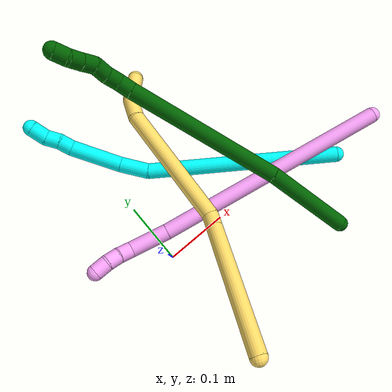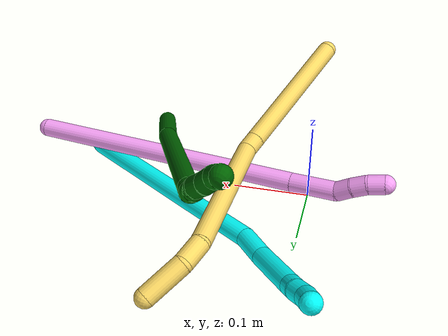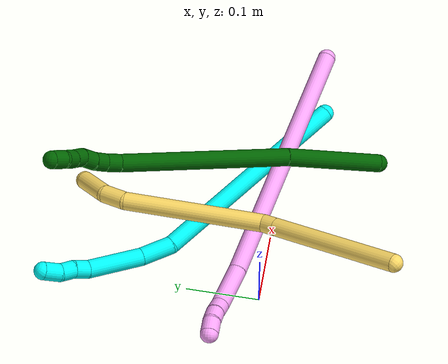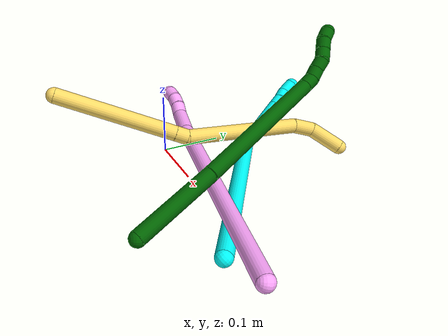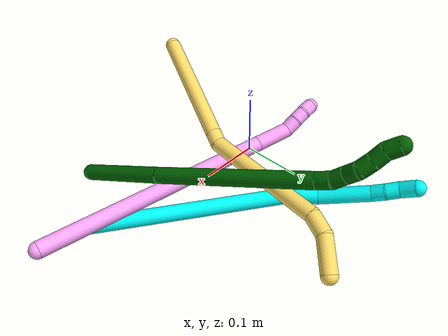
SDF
<sdf version="1.7">
 <world name="default">
  <model name="3">
   <static>0</static>
   <link name="3">
    <collision name="collision-cylinder-e_1_1_4">
     <pose>-0.116083 0.077307 0.063364 -0.884189 -0.859907 0.427485</pose>
     <geometry><cylinder><radius>0.0125</radius><length>0.306377</length></cylinder></geometry>
     <surface>
      <friction><ode><mu>1.16</mu><mu2>1.16</mu2><slip1>0</slip1><slip2>0</slip2></ode></friction>
      <contact><ode><kp>1e+06</kp><kd>1</kd><max_vel>0</max_vel><min_depth>0.001</min_depth></ode></contact>
     </surface>
    </collision>
    <visual name="visual-cylinder-e_1_1_4">
     <pose>-0.116083 0.077307 0.063364 -0.884189 -0.859907 0.427485</pose>
     <geometry><cylinder><radius>0.0125</radius><length>0.306377</length></cylinder></geometry>
     <material><ambient>0.003922 1 0.996078 1</ambient></material>
    </visual>
    <collision name="collision-cylinder-e_2_4_5">
     <pose>-0.244435 0.167256 0.141557 -0.70602 -0.561861 0.211842</pose>
     <geometry><cylinder><radius>0.0125</radius><length>0.046054</length></cylinder></geometry>
     <surface>
      <friction><ode><mu>1.16</mu><mu2>1.16</mu2><slip1>0</slip1><slip2>0</slip2></ode></friction>
      <contact><ode><kp>1e+06</kp><kd>1</kd><max_vel>0</max_vel><min_depth>0.001</min_depth></ode></contact>
     </surface>
    </collision>
    <visual name="visual-cylinder-e_2_4_5">
     <pose>-0.244435 0.167256 0.141557 -0.70602 -0.561861 0.211842</pose>
     <geometry><cylinder><radius>0.0125</radius><length>0.046054</length></cylinder></geometry>
     <material><ambient>0.003922 1 0.996078 1</ambient></material>
    </visual>
    <collision name="collision-cylinder-e_3_5_6">
     <pose>-0.276787 0.196698 0.186981 -0.502122 -0.522157 0.136833</pose>
     <geometry><cylinder><radius>0.0125</radius><length>0.08054</length></cylinder></geometry>
     <surface>
      <friction><ode><mu>1.16</mu><mu2>1.16</mu2><slip1>0</slip1><slip2>0</slip2></ode></friction>
      <contact><ode><kp>1e+06</kp><kd>1</kd><max_vel>0</max_vel><min_depth>0.001</min_depth></ode></contact>
     </surface>
    </collision>
    <visual name="visual-cylinder-e_3_5_6">
     <pose>-0.276787 0.196698 0.186981 -0.502122 -0.522157 0.136833</pose>
     <geometry><cylinder><radius>0.0125</radius><length>0.08054</length></cylinder></geometry>
     <material><ambient>0.003922 1 0.996078 1</ambient></material>
    </visual>
    <collision name="collision-cylinder-e_4_6_7">
     <pose>-0.300838 0.216154 0.226873 -0.278399 -0.389252 0.055222</pose>
     <geometry><cylinder><radius>0.0125</radius><length>0.020902</length></cylinder></geometry>
     <surface>
      <friction><ode><mu>1.16</mu><mu2>1.16</mu2><slip1>0</slip1><slip2>0</slip2></ode></friction>
      <contact><ode><kp>1e+06</kp><kd>1</kd><max_vel>0</max_vel><min_depth>0.001</min_depth></ode></contact>
     </surface>
    </collision>
    <visual name="visual-cylinder-e_4_6_7">
     <pose>-0.300838 0.216154 0.226873 -0.278399 -0.389252 0.055222</pose>
     <geometry><cylinder><radius>0.0125</radius><length>0.020902</length></cylinder></geometry>
     <material><ambient>0.003922 1 0.996078 1</ambient></material>
    </visual>
    <collision name="collision-cylinder-e_5_7_8">
     <pose>-0.310623 0.222325 0.243993 -0.422058 -0.596197 0.131449</pose>
     <geometry><cylinder><radius>0.0125</radius><length>0.020727</length></cylinder></geometry>
     <surface>
      <friction><ode><mu>1.16</mu><mu2>1.16</mu2><slip1>0</slip1><slip2>0</slip2></ode></friction>
      <contact><ode><kp>1e+06</kp><kd>1</kd><max_vel>0</max_vel><min_depth>0.001</min_depth></ode></contact>
     </surface>
    </collision>
    <visual name="visual-cylinder-e_5_7_8">
     <pose>-0.310623 0.222325 0.243993 -0.422058 -0.596197 0.131449</pose>
     <geometry><cylinder><radius>0.0125</radius><length>0.020727</length></cylinder></geometry>
     <material><ambient>0.003922 1 0.996078 1</ambient></material>
    </visual>
    <collision name="collision-cylinder-e_6_8_2">
     <pose>-0.320258 0.228723 0.263581 -0.240529 -0.305163 0.037163</pose>
     <geometry><cylinder><radius>0.0125</radius><length>0.0254</length></cylinder></geometry>
     <surface>
      <friction><ode><mu>1.16</mu><mu2>1.16</mu2><slip1>0</slip1><slip2>0</slip2></ode></friction>
      <contact><ode><kp>1e+06</kp><kd>1</kd><max_vel>0</max_vel><min_depth>0.001</min_depth></ode></contact>
     </surface>
    </collision>
    <visual name="visual-cylinder-e_6_8_2">
     <pose>-0.320258 0.228723 0.263581 -0.240529 -0.305163 0.037163</pose>
     <geometry><cylinder><radius>0.0125</radius><length>0.0254</length></cylinder></geometry>
     <material><ambient>0.003922 1 0.996078 1</ambient></material>
    </visual>
    <collision name="collision-sphere-2">
     <pose>-0.324074 0.231609 0.275345 0 -0 0</pose>
     <geometry><sphere><radius>0.0125</radius></sphere></geometry>
     <surface>
      <friction><ode><mu>1.16</mu><mu2>1.16</mu2><slip1>0</slip1><slip2>0</slip2></ode></friction>
      <contact><ode><kp>1e+06</kp><kd>1</kd><max_vel>0</max_vel><min_depth>0.001</min_depth></ode></contact>
     </surface>
    </collision>
    <visual name="visual-sphere-2">
     <pose>-0.324074 0.231609 0.275345 0 -0 0</pose>
     <geometry><sphere><radius>0.0125</radius></sphere></geometry>
     <material><ambient>0.003922 1 0.996078 1</ambient></material>
    </visual>
    <collision name="collision-sphere-4">
     <pose>-0.232167 0.154613 0.126728 0 -0 0</pose>
     <geometry><sphere><radius>0.0125</radius></sphere></geometry>
     <surface>
      <friction><ode><mu>1.16</mu><mu2>1.16</mu2><slip1>0</slip1><slip2>0</slip2></ode></friction>
      <contact><ode><kp>1e+06</kp><kd>1</kd><max_vel>0</max_vel><min_depth>0.001</min_depth></ode></contact>
     </surface>
    </collision>
    <visual name="visual-sphere-4">
     <pose>-0.232167 0.154613 0.126728 0 -0 0</pose>
     <geometry><sphere><radius>0.0125</radius></sphere></geometry>
     <material><ambient>0.003922 1 0.996078 1</ambient></material>
    </visual>
    <collision name="collision-sphere-1">
     <geometry><sphere><radius>0.0125</radius></sphere></geometry>
     <surface>
      <friction><ode><mu>1.16</mu><mu2>1.16</mu2><slip1>0</slip1><slip2>0</slip2></ode></friction>
      <contact><ode><kp>1e+06</kp><kd>1</kd><max_vel>0</max_vel><min_depth>0.001</min_depth></ode></contact>
     </surface>
    </collision>
    <visual name="visual-sphere-1">
     <geometry><sphere><radius>0.0125</radius></sphere></geometry>
     <material><ambient>0.003922 1 0.996078 1</ambient></material>
    </visual>
    <collision name="collision-sphere-8">
     <pose>-0.316443 0.225838 0.251816 0 -0 0</pose>
     <geometry><sphere><radius>0.0125</radius></sphere></geometry>
     <surface>
      <friction><ode><mu>1.16</mu><mu2>1.16</mu2><slip1>0</slip1><slip2>0</slip2></ode></friction>
      <contact><ode><kp>1e+06</kp><kd>1</kd><max_vel>0</max_vel><min_depth>0.001</min_depth></ode></contact>
     </surface>
    </collision>
    <visual name="visual-sphere-8">
     <pose>-0.316443 0.225838 0.251816 0 -0 0</pose>
     <geometry><sphere><radius>0.0125</radius></sphere></geometry>
     <material><ambient>0.003922 1 0.996078 1</ambient></material>
    </visual>
    <collision name="collision-sphere-5">
     <pose>-0.256703 0.1799 0.156385 0 -0 0</pose>
     <geometry><sphere><radius>0.0125</radius></sphere></geometry>
     <surface>
      <friction><ode><mu>1.16</mu><mu2>1.16</mu2><slip1>0</slip1><slip2>0</slip2></ode></friction>
      <contact><ode><kp>1e+06</kp><kd>1</kd><max_vel>0</max_vel><min_depth>0.001</min_depth></ode></contact>
     </surface>
    </collision>
    <visual name="visual-sphere-5">
     <pose>-0.256703 0.1799 0.156385 0 -0 0</pose>
     <geometry><sphere><radius>0.0125</radius></sphere></geometry>
     <material><ambient>0.003922 1 0.996078 1</ambient></material>
    </visual>
    <collision name="collision-sphere-6">
     <pose>-0.296872 0.213497 0.217576 0 -0 0</pose>
     <geometry><sphere><radius>0.0125</radius></sphere></geometry>
     <surface>
      <friction><ode><mu>1.16</mu><mu2>1.16</mu2><slip1>0</slip1><slip2>0</slip2></ode></friction>
      <contact><ode><kp>1e+06</kp><kd>1</kd><max_vel>0</max_vel><min_depth>0.001</min_depth></ode></contact>
     </surface>
    </collision>
    <visual name="visual-sphere-6">
     <pose>-0.296872 0.213497 0.217576 0 -0 0</pose>
     <geometry><sphere><radius>0.0125</radius></sphere></geometry>
     <material><ambient>0.003922 1 0.996078 1</ambient></material>
    </visual>
    <collision name="collision-sphere-7">
     <pose>-0.304804 0.218812 0.23617 0 -0 0</pose>
     <geometry><sphere><radius>0.0125</radius></sphere></geometry>
     <surface>
      <friction><ode><mu>1.16</mu><mu2>1.16</mu2><slip1>0</slip1><slip2>0</slip2></ode></friction>
      <contact><ode><kp>1e+06</kp><kd>1</kd><max_vel>0</max_vel><min_depth>0.001</min_depth></ode></contact>
     </surface>
    </collision>
    <visual name="visual-sphere-7">
     <pose>-0.304804 0.218812 0.23617 0 -0 0</pose>
     <geometry><sphere><radius>0.0125</radius></sphere></geometry>
     <material><ambient>0.003922 1 0.996078 1</ambient></material>
    </visual>
    <inertial>
     <pose>-0.179952 0.124331 0.114973 0 -0 0</pose>
     <mass>0.5</mass>
     <inertia>
      <ixx>0.002117</ixx>
      <ixy>0</ixy>
      <ixz>0</ixz>
      <iyy>0.002707</iyy>
      <iyz>0</iyz>
      <izz>0.000636</izz>
     </inertia>
    </inertial>
   </link>
   <pose>0.309725 -0.043417 0.01146 -0.906077 0.189602 0.082566</pose>
  </model>
  <model name="4">
   <static>0</static>
   <link name="4">
    <collision name="collision-cylinder-e_1_1_4">
     <pose>-0.179604 -0.054889 -0.002141 1.60979 -1.27399 -1.31149</pose>
     <geometry><cylinder><radius>0.0125</radius><length>0.375632</length></cylinder></geometry>
     <surface>
      <friction><ode><mu>1.16</mu><mu2>1.16</mu2><slip1>0</slip1><slip2>0</slip2></ode></friction>
      <contact><ode><kp>1e+06</kp><kd>1</kd><max_vel>0</max_vel><min_depth>0.001</min_depth></ode></contact>
     </surface>
    </collision>
    <visual name="visual-cylinder-e_1_1_4">
     <pose>-0.179604 -0.054889 -0.002141 1.60979 -1.27399 -1.31149</pose>
     <geometry><cylinder><radius>0.0125</radius><length>0.375632</length></cylinder></geometry>
     <material><ambient>1 0.65098 0.996078 1</ambient></material>
    </visual>
    <collision name="collision-cylinder-e_2_4_5">
     <pose>-0.388872 -0.116798 -0.005576 1.75303 -1.33462 -1.51568</pose>
     <geometry><cylinder><radius>0.0125</radius><length>0.061021</length></cylinder></geometry>
     <surface>
      <friction><ode><mu>1.16</mu><mu2>1.16</mu2><slip1>0</slip1><slip2>0</slip2></ode></friction>
      <contact><ode><kp>1e+06</kp><kd>1</kd><max_vel>0</max_vel><min_depth>0.001</min_depth></ode></contact>
     </surface>
    </collision>
    <visual name="visual-cylinder-e_2_4_5">
     <pose>-0.388872 -0.116798 -0.005576 1.75303 -1.33462 -1.51568</pose>
     <geometry><cylinder><radius>0.0125</radius><length>0.061021</length></cylinder></geometry>
     <material><ambient>1 0.65098 0.996078 1</ambient></material>
    </visual>
    <collision name="collision-cylinder-e_3_5_6">
     <pose>-0.429195 -0.121751 -0.005413 -0.957095 -1.33783 0.778333</pose>
     <geometry><cylinder><radius>0.0125</radius><length>0.021912</length></cylinder></geometry>
     <surface>
      <friction><ode><mu>1.16</mu><mu2>1.16</mu2><slip1>0</slip1><slip2>0</slip2></ode></friction>
      <contact><ode><kp>1e+06</kp><kd>1</kd><max_vel>0</max_vel><min_depth>0.001</min_depth></ode></contact>
     </surface>
    </collision>
    <visual name="visual-cylinder-e_3_5_6">
     <pose>-0.429195 -0.121751 -0.005413 -0.957095 -1.33783 0.778333</pose>
     <geometry><cylinder><radius>0.0125</radius><length>0.021912</length></cylinder></geometry>
     <material><ambient>1 0.65098 0.996078 1</ambient></material>
    </visual>
    <collision name="collision-cylinder-e_4_6_7">
     <pose>-0.449725 -0.119154 -0.00201 -0.265377 -1.36915 0.21704</pose>
     <geometry><cylinder><radius>0.0125</radius><length>0.020147</length></cylinder></geometry>
     <surface>
      <friction><ode><mu>1.16</mu><mu2>1.16</mu2><slip1>0</slip1><slip2>0</slip2></ode></friction>
      <contact><ode><kp>1e+06</kp><kd>1</kd><max_vel>0</max_vel><min_depth>0.001</min_depth></ode></contact>
     </surface>
    </collision>
    <visual name="visual-cylinder-e_4_6_7">
     <pose>-0.449725 -0.119154 -0.00201 -0.265377 -1.36915 0.21704</pose>
     <geometry><cylinder><radius>0.0125</radius><length>0.020147</length></cylinder></geometry>
     <material><ambient>1 0.65098 0.996078 1</ambient></material>
    </visual>
    <collision name="collision-cylinder-e_5_7_2">
     <pose>-0.469746 -0.120818 0.002264 0.755893 -1.26568 -0.566753</pose>
     <geometry><cylinder><radius>0.0125</radius><length>0.021287</length></cylinder></geometry>
     <surface>
      <friction><ode><mu>1.16</mu><mu2>1.16</mu2><slip1>0</slip1><slip2>0</slip2></ode></friction>
      <contact><ode><kp>1e+06</kp><kd>1</kd><max_vel>0</max_vel><min_depth>0.001</min_depth></ode></contact>
     </surface>
    </collision>
    <visual name="visual-cylinder-e_5_7_2">
     <pose>-0.469746 -0.120818 0.002264 0.755893 -1.26568 -0.566753</pose>
     <geometry><cylinder><radius>0.0125</radius><length>0.021287</length></cylinder></geometry>
     <material><ambient>1 0.65098 0.996078 1</ambient></material>
    </visual>
    <collision name="collision-sphere-2">
     <pose>-0.479898 -0.123012 0.00459 0 -0 0</pose>
     <geometry><sphere><radius>0.0125</radius></sphere></geometry>
     <surface>
      <friction><ode><mu>1.16</mu><mu2>1.16</mu2><slip1>0</slip1><slip2>0</slip2></ode></friction>
      <contact><ode><kp>1e+06</kp><kd>1</kd><max_vel>0</max_vel><min_depth>0.001</min_depth></ode></contact>
     </surface>
    </collision>
    <visual name="visual-sphere-2">
     <pose>-0.479898 -0.123012 0.00459 0 -0 0</pose>
     <geometry><sphere><radius>0.0125</radius></sphere></geometry>
     <material><ambient>1 0.65098 0.996078 1</ambient></material>
    </visual>
    <collision name="collision-sphere-7">
     <pose>-0.459595 -0.118625 -6.3e-05 0 -0 0</pose>
     <geometry><sphere><radius>0.0125</radius></sphere></geometry>
     <surface>
      <friction><ode><mu>1.16</mu><mu2>1.16</mu2><slip1>0</slip1><slip2>0</slip2></ode></friction>
      <contact><ode><kp>1e+06</kp><kd>1</kd><max_vel>0</max_vel><min_depth>0.001</min_depth></ode></contact>
     </surface>
    </collision>
    <visual name="visual-sphere-7">
     <pose>-0.459595 -0.118625 -6.3e-05 0 -0 0</pose>
     <geometry><sphere><radius>0.0125</radius></sphere></geometry>
     <material><ambient>1 0.65098 0.996078 1</ambient></material>
    </visual>
    <collision name="collision-sphere-6">
     <pose>-0.439855 -0.119683 -0.003957 0 -0 0</pose>
     <geometry><sphere><radius>0.0125</radius></sphere></geometry>
     <surface>
      <friction><ode><mu>1.16</mu><mu2>1.16</mu2><slip1>0</slip1><slip2>0</slip2></ode></friction>
      <contact><ode><kp>1e+06</kp><kd>1</kd><max_vel>0</max_vel><min_depth>0.001</min_depth></ode></contact>
     </surface>
    </collision>
    <visual name="visual-sphere-6">
     <pose>-0.439855 -0.119683 -0.003957 0 -0 0</pose>
     <geometry><sphere><radius>0.0125</radius></sphere></geometry>
     <material><ambient>1 0.65098 0.996078 1</ambient></material>
    </visual>
    <collision name="collision-sphere-5">
     <pose>-0.418535 -0.123819 -0.00687 0 -0 0</pose>
     <geometry><sphere><radius>0.0125</radius></sphere></geometry>
     <surface>
      <friction><ode><mu>1.16</mu><mu2>1.16</mu2><slip1>0</slip1><slip2>0</slip2></ode></friction>
      <contact><ode><kp>1e+06</kp><kd>1</kd><max_vel>0</max_vel><min_depth>0.001</min_depth></ode></contact>
     </surface>
    </collision>
    <visual name="visual-sphere-5">
     <pose>-0.418535 -0.123819 -0.00687 0 -0 0</pose>
     <geometry><sphere><radius>0.0125</radius></sphere></geometry>
     <material><ambient>1 0.65098 0.996078 1</ambient></material>
    </visual>
    <collision name="collision-sphere-1">
     <geometry><sphere><radius>0.0125</radius></sphere></geometry>
     <surface>
      <friction><ode><mu>1.16</mu><mu2>1.16</mu2><slip1>0</slip1><slip2>0</slip2></ode></friction>
      <contact><ode><kp>1e+06</kp><kd>1</kd><max_vel>0</max_vel><min_depth>0.001</min_depth></ode></contact>
     </surface>
    </collision>
    <visual name="visual-sphere-1">
     <geometry><sphere><radius>0.0125</radius></sphere></geometry>
     <material><ambient>1 0.65098 0.996078 1</ambient></material>
    </visual>
    <collision name="collision-sphere-4">
     <pose>-0.359208 -0.109777 -0.004282 0 -0 0</pose>
     <geometry><sphere><radius>0.0125</radius></sphere></geometry>
     <surface>
      <friction><ode><mu>1.16</mu><mu2>1.16</mu2><slip1>0</slip1><slip2>0</slip2></ode></friction>
      <contact><ode><kp>1e+06</kp><kd>1</kd><max_vel>0</max_vel><min_depth>0.001</min_depth></ode></contact>
     </surface>
    </collision>
    <visual name="visual-sphere-4">
     <pose>-0.359208 -0.109777 -0.004282 0 -0 0</pose>
     <geometry><sphere><radius>0.0125</radius></sphere></geometry>
     <material><ambient>1 0.65098 0.996078 1</ambient></material>
    </visual>
    <inertial>
     <pose>-0.239319 -0.070771 -0.002511 0 -0 0</pose>
     <mass>0.5</mass>
     <inertia>
      <ixx>-0.000962</ixx>
      <ixy>0</ixy>
      <ixz>0</ixz>
      <iyy>0.002806</iyy>
      <iyz>0</iyz>
      <izz>0.005563</izz>
     </inertia>
    </inertial>
   </link>
   <pose>0.388501 -0.033378 0.034358 1.25732 0.296254 -0.256961</pose>
  </model>
  <model name="5">
   <static>0</static>
   <link name="5">
    <collision name="collision-cylinder-e_1_1_4">
     <pose>0.020339 0.094131 0.01041 -1.46066 0.211545 -0.18958</pose>
     <geometry><cylinder><radius>0.0125</radius><length>0.193729</length></cylinder></geometry>
     <surface>
      <friction><ode><mu>1.16</mu><mu2>1.16</mu2><slip1>0</slip1><slip2>0</slip2></ode></friction>
      <contact><ode><kp>1e+06</kp><kd>1</kd><max_vel>0</max_vel><min_depth>0.001</min_depth></ode></contact>
     </surface>
    </collision>
    <visual name="visual-cylinder-e_1_1_4">
     <pose>0.020339 0.094131 0.01041 -1.46066 0.211545 -0.18958</pose>
     <geometry><cylinder><radius>0.0125</radius><length>0.193729</length></cylinder></geometry>
     <material><ambient>1 0.858824 0.4 1</ambient></material>
    </visual>
    <collision name="collision-cylinder-e_2_4_5">
     <pose>0.042872 0.19841 0.02194 -1.46076 0.211733 -0.189768</pose>
     <geometry><cylinder><radius>0.0125</radius><length>0.020886</length></cylinder></geometry>
     <surface>
      <friction><ode><mu>1.16</mu><mu2>1.16</mu2><slip1>0</slip1><slip2>0</slip2></ode></friction>
      <contact><ode><kp>1e+06</kp><kd>1</kd><max_vel>0</max_vel><min_depth>0.001</min_depth></ode></contact>
     </surface>
    </collision>
    <visual name="visual-cylinder-e_2_4_5">
     <pose>0.042872 0.19841 0.02194 -1.46076 0.211733 -0.189768</pose>
     <geometry><cylinder><radius>0.0125</radius><length>0.020886</length></cylinder></geometry>
     <material><ambient>1 0.858824 0.4 1</ambient></material>
    </visual>
    <collision name="collision-cylinder-e_3_5_6">
     <pose>0.090558 0.285802 0.062231 -1.10149 0.483653 -0.300669</pose>
     <geometry><cylinder><radius>0.0125</radius><length>0.195656</length></cylinder></geometry>
     <surface>
      <friction><ode><mu>1.16</mu><mu2>1.16</mu2><slip1>0</slip1><slip2>0</slip2></ode></friction>
      <contact><ode><kp>1e+06</kp><kd>1</kd><max_vel>0</max_vel><min_depth>0.001</min_depth></ode></contact>
     </surface>
    </collision>
    <visual name="visual-cylinder-e_3_5_6">
     <pose>0.090558 0.285802 0.062231 -1.10149 0.483653 -0.300669</pose>
     <geometry><cylinder><radius>0.0125</radius><length>0.195656</length></cylinder></geometry>
     <material><ambient>1 0.858824 0.4 1</ambient></material>
    </visual>
    <collision name="collision-cylinder-e_4_6_7">
     <pose>0.141317 0.379135 0.103528 -1.43941 0.313821 -0.2756</pose>
     <geometry><cylinder><radius>0.0125</radius><length>0.034126</length></cylinder></geometry>
     <surface>
      <friction><ode><mu>1.16</mu><mu2>1.16</mu2><slip1>0</slip1><slip2>0</slip2></ode></friction>
      <contact><ode><kp>1e+06</kp><kd>1</kd><max_vel>0</max_vel><min_depth>0.001</min_depth></ode></contact>
     </surface>
    </collision>
    <visual name="visual-cylinder-e_4_6_7">
     <pose>0.141317 0.379135 0.103528 -1.43941 0.313821 -0.2756</pose>
     <geometry><cylinder><radius>0.0125</radius><length>0.034126</length></cylinder></geometry>
     <material><ambient>1 0.858824 0.4 1</ambient></material>
    </visual>
    <collision name="collision-cylinder-e_5_7_2">
     <pose>0.147438 0.422496 0.100317 -1.76406 0.030724 -0.037318</pose>
     <geometry><cylinder><radius>0.0125</radius><length>0.055603</length></cylinder></geometry>
     <surface>
      <friction><ode><mu>1.16</mu><mu2>1.16</mu2><slip1>0</slip1><slip2>0</slip2></ode></friction>
      <contact><ode><kp>1e+06</kp><kd>1</kd><max_vel>0</max_vel><min_depth>0.001</min_depth></ode></contact>
     </surface>
    </collision>
    <visual name="visual-cylinder-e_5_7_2">
     <pose>0.147438 0.422496 0.100317 -1.76406 0.030724 -0.037318</pose>
     <geometry><cylinder><radius>0.0125</radius><length>0.055603</length></cylinder></geometry>
     <material><ambient>1 0.858824 0.4 1</ambient></material>
    </visual>
    <collision name="collision-sphere-2">
     <pose>0.148292 0.449767 0.09498 0 -0 0</pose>
     <geometry><sphere><radius>0.0125</radius></sphere></geometry>
     <surface>
      <friction><ode><mu>1.16</mu><mu2>1.16</mu2><slip1>0</slip1><slip2>0</slip2></ode></friction>
      <contact><ode><kp>1e+06</kp><kd>1</kd><max_vel>0</max_vel><min_depth>0.001</min_depth></ode></contact>
     </surface>
    </collision>
    <visual name="visual-sphere-2">
     <pose>0.148292 0.449767 0.09498 0 -0 0</pose>
     <geometry><sphere><radius>0.0125</radius></sphere></geometry>
     <material><ambient>1 0.858824 0.4 1</ambient></material>
    </visual>
    <collision name="collision-sphere-7">
     <pose>0.146584 0.395225 0.105654 0 -0 0</pose>
     <geometry><sphere><radius>0.0125</radius></sphere></geometry>
     <surface>
      <friction><ode><mu>1.16</mu><mu2>1.16</mu2><slip1>0</slip1><slip2>0</slip2></ode></friction>
      <contact><ode><kp>1e+06</kp><kd>1</kd><max_vel>0</max_vel><min_depth>0.001</min_depth></ode></contact>
     </surface>
    </collision>
    <visual name="visual-sphere-7">
     <pose>0.146584 0.395225 0.105654 0 -0 0</pose>
     <geometry><sphere><radius>0.0125</radius></sphere></geometry>
     <material><ambient>1 0.858824 0.4 1</ambient></material>
    </visual>
    <collision name="collision-sphere-6">
     <pose>0.13605 0.363045 0.101401 0 -0 0</pose>
     <geometry><sphere><radius>0.0125</radius></sphere></geometry>
     <surface>
      <friction><ode><mu>1.16</mu><mu2>1.16</mu2><slip1>0</slip1><slip2>0</slip2></ode></friction>
      <contact><ode><kp>1e+06</kp><kd>1</kd><max_vel>0</max_vel><min_depth>0.001</min_depth></ode></contact>
     </surface>
    </collision>
    <visual name="visual-sphere-6">
     <pose>0.13605 0.363045 0.101401 0 -0 0</pose>
     <geometry><sphere><radius>0.0125</radius></sphere></geometry>
     <material><ambient>1 0.858824 0.4 1</ambient></material>
    </visual>
    <collision name="collision-sphere-5">
     <pose>0.045067 0.208558 0.023062 0 -0 0</pose>
     <geometry><sphere><radius>0.0125</radius></sphere></geometry>
     <surface>
      <friction><ode><mu>1.16</mu><mu2>1.16</mu2><slip1>0</slip1><slip2>0</slip2></ode></friction>
      <contact><ode><kp>1e+06</kp><kd>1</kd><max_vel>0</max_vel><min_depth>0.001</min_depth></ode></contact>
     </surface>
    </collision>
    <visual name="visual-sphere-5">
     <pose>0.045067 0.208558 0.023062 0 -0 0</pose>
     <geometry><sphere><radius>0.0125</radius></sphere></geometry>
     <material><ambient>1 0.858824 0.4 1</ambient></material>
    </visual>
    <collision name="collision-sphere-1">
     <geometry><sphere><radius>0.0125</radius></sphere></geometry>
     <surface>
      <friction><ode><mu>1.16</mu><mu2>1.16</mu2><slip1>0</slip1><slip2>0</slip2></ode></friction>
      <contact><ode><kp>1e+06</kp><kd>1</kd><max_vel>0</max_vel><min_depth>0.001</min_depth></ode></contact>
     </surface>
    </collision>
    <visual name="visual-sphere-1">
     <geometry><sphere><radius>0.0125</radius></sphere></geometry>
     <material><ambient>1 0.858824 0.4 1</ambient></material>
    </visual>
    <collision name="collision-sphere-4">
     <pose>0.040677 0.188262 0.020819 0 -0 0</pose>
     <geometry><sphere><radius>0.0125</radius></sphere></geometry>
     <surface>
      <friction><ode><mu>1.16</mu><mu2>1.16</mu2><slip1>0</slip1><slip2>0</slip2></ode></friction>
      <contact><ode><kp>1e+06</kp><kd>1</kd><max_vel>0</max_vel><min_depth>0.001</min_depth></ode></contact>
     </surface>
    </collision>
    <visual name="visual-sphere-4">
     <pose>0.040677 0.188262 0.020819 0 -0 0</pose>
     <geometry><sphere><radius>0.0125</radius></sphere></geometry>
     <material><ambient>1 0.858824 0.4 1</ambient></material>
    </visual>
    <inertial>
     <pose>0.071149 0.229459 0.047524 0 -0 0</pose>
     <mass>0.5</mass>
     <inertia>
      <ixx>0.000876</ixx>
      <ixy>0</ixy>
      <ixz>0</ixz>
      <iyy>0.000193</iyy>
      <iyz>0</iyz>
      <izz>-0.001535</izz>
     </inertia>
    </inertial>
   </link>
   <pose>0.00617 -0.177146 0.138746 -1.78032 -0.993352 1.27714</pose>
  </model>
  <model name="6">
   <static>0</static>
   <link name="6">
    <collision name="collision-cylinder-e_1_1_4">
     <pose>-0.033585 0.020347 0.055869 -0.349262 -0.514167 0.0927</pose>
     <geometry><cylinder><radius>0.0125</radius><length>0.136576</length></cylinder></geometry>
     <surface>
      <friction><ode><mu>1.16</mu><mu2>1.16</mu2><slip1>0</slip1><slip2>0</slip2></ode></friction>
      <contact><ode><kp>1e+06</kp><kd>1</kd><max_vel>0</max_vel><min_depth>0.001</min_depth></ode></contact>
     </surface>
    </collision>
    <visual name="visual-cylinder-e_1_1_4">
     <pose>-0.033585 0.020347 0.055869 -0.349262 -0.514167 0.0927</pose>
     <geometry><cylinder><radius>0.0125</radius><length>0.136576</length></cylinder></geometry>
     <material><ambient>0 0.392157 0.003922 1</ambient></material>
    </visual>
    <collision name="collision-cylinder-e_2_4_5">
     <pose>-0.122248 0.087458 0.208744 -0.449205 -0.472772 0.109955</pose>
     <geometry><cylinder><radius>0.0125</radius><length>0.241914</length></cylinder></geometry>
     <surface>
      <friction><ode><mu>1.16</mu><mu2>1.16</mu2><slip1>0</slip1><slip2>0</slip2></ode></friction>
      <contact><ode><kp>1e+06</kp><kd>1</kd><max_vel>0</max_vel><min_depth>0.001</min_depth></ode></contact>
     </surface>
    </collision>
    <visual name="visual-cylinder-e_2_4_5">
     <pose>-0.122248 0.087458 0.208744 -0.449205 -0.472772 0.109955</pose>
     <geometry><cylinder><radius>0.0125</radius><length>0.241914</length></cylinder></geometry>
     <material><ambient>0 0.392157 0.003922 1</ambient></material>
    </visual>
    <collision name="collision-cylinder-e_3_5_6">
     <pose>-0.182883 0.137765 0.31408 -0.402151 -0.550425 0.114987</pose>
     <geometry><cylinder><radius>0.0125</radius><length>0.021244</length></cylinder></geometry>
     <surface>
      <friction><ode><mu>1.16</mu><mu2>1.16</mu2><slip1>0</slip1><slip2>0</slip2></ode></friction>
      <contact><ode><kp>1e+06</kp><kd>1</kd><max_vel>0</max_vel><min_depth>0.001</min_depth></ode></contact>
     </surface>
    </collision>
    <visual name="visual-cylinder-e_3_5_6">
     <pose>-0.182883 0.137765 0.31408 -0.402151 -0.550425 0.114987</pose>
     <geometry><cylinder><radius>0.0125</radius><length>0.021244</length></cylinder></geometry>
     <material><ambient>0 0.392157 0.003922 1</ambient></material>
    </visual>
    <collision name="collision-cylinder-e_4_6_7">
     <pose>-0.196129 0.144745 0.328029 -0.54891 -0.862618 0.257716</pose>
     <geometry><cylinder><radius>0.0125</radius><length>0.02025</length></cylinder></geometry>
     <surface>
      <friction><ode><mu>1.16</mu><mu2>1.16</mu2><slip1>0</slip1><slip2>0</slip2></ode></friction>
      <contact><ode><kp>1e+06</kp><kd>1</kd><max_vel>0</max_vel><min_depth>0.001</min_depth></ode></contact>
     </surface>
    </collision>
    <visual name="visual-cylinder-e_4_6_7">
     <pose>-0.196129 0.144745 0.328029 -0.54891 -0.862618 0.257716</pose>
     <geometry><cylinder><radius>0.0125</radius><length>0.02025</length></cylinder></geometry>
     <material><ambient>0 0.392157 0.003922 1</ambient></material>
    </visual>
    <collision name="collision-cylinder-e_5_7_8">
     <pose>-0.211768 0.149944 0.339465 -0.294187 -0.917923 0.146171</pose>
     <geometry><cylinder><radius>0.0125</radius><length>0.020013</length></cylinder></geometry>
     <surface>
      <friction><ode><mu>1.16</mu><mu2>1.16</mu2><slip1>0</slip1><slip2>0</slip2></ode></friction>
      <contact><ode><kp>1e+06</kp><kd>1</kd><max_vel>0</max_vel><min_depth>0.001</min_depth></ode></contact>
     </surface>
    </collision>
    <visual name="visual-cylinder-e_5_7_8">
     <pose>-0.211768 0.149944 0.339465 -0.294187 -0.917923 0.146171</pose>
     <geometry><cylinder><radius>0.0125</radius><length>0.020013</length></cylinder></geometry>
     <material><ambient>0 0.392157 0.003922 1</ambient></material>
    </visual>
    <collision name="collision-cylinder-e_6_8_9">
     <pose>-0.227487 0.157131 0.348477 -1.03867 -0.889867 0.532245</pose>
     <geometry><cylinder><radius>0.0125</radius><length>0.02</length></cylinder></geometry>
     <surface>
      <friction><ode><mu>1.16</mu><mu2>1.16</mu2><slip1>0</slip1><slip2>0</slip2></ode></friction>
      <contact><ode><kp>1e+06</kp><kd>1</kd><max_vel>0</max_vel><min_depth>0.001</min_depth></ode></contact>
     </surface>
    </collision>
    <visual name="visual-cylinder-e_6_8_9">
     <pose>-0.227487 0.157131 0.348477 -1.03867 -0.889867 0.532245</pose>
     <geometry><cylinder><radius>0.0125</radius><length>0.02</length></cylinder></geometry>
     <material><ambient>0 0.392157 0.003922 1</ambient></material>
    </visual>
    <collision name="collision-cylinder-e_7_9_10">
     <pose>-0.243727 0.167201 0.354254 -1.06321 -1.01044 0.628942</pose>
     <geometry><cylinder><radius>0.0125</radius><length>0.02</length></cylinder></geometry>
     <surface>
      <friction><ode><mu>1.16</mu><mu2>1.16</mu2><slip1>0</slip1><slip2>0</slip2></ode></friction>
      <contact><ode><kp>1e+06</kp><kd>1</kd><max_vel>0</max_vel><min_depth>0.001</min_depth></ode></contact>
     </surface>
    </collision>
    <visual name="visual-cylinder-e_7_9_10">
     <pose>-0.243727 0.167201 0.354254 -1.06321 -1.01044 0.628942</pose>
     <geometry><cylinder><radius>0.0125</radius><length>0.02</length></cylinder></geometry>
     <material><ambient>0 0.392157 0.003922 1</ambient></material>
    </visual>
    <collision name="collision-cylinder-e_8_10_2">
     <pose>-0.259108 0.176346 0.362496 -0.671984 -0.762797 0.2783</pose>
     <geometry><cylinder><radius>0.0125</radius><length>0.020002</length></cylinder></geometry>
     <surface>
      <friction><ode><mu>1.16</mu><mu2>1.16</mu2><slip1>0</slip1><slip2>0</slip2></ode></friction>
      <contact><ode><kp>1e+06</kp><kd>1</kd><max_vel>0</max_vel><min_depth>0.001</min_depth></ode></contact>
     </surface>
    </collision>
    <visual name="visual-cylinder-e_8_10_2">
     <pose>-0.259108 0.176346 0.362496 -0.671984 -0.762797 0.2783</pose>
     <geometry><cylinder><radius>0.0125</radius><length>0.020002</length></cylinder></geometry>
     <material><ambient>0 0.392157 0.003922 1</ambient></material>
    </visual>
    <collision name="collision-sphere-2">
     <pose>-0.266018 0.180847 0.368154 0 -0 0</pose>
     <geometry><sphere><radius>0.0125</radius></sphere></geometry>
     <surface>
      <friction><ode><mu>1.16</mu><mu2>1.16</mu2><slip1>0</slip1><slip2>0</slip2></ode></friction>
      <contact><ode><kp>1e+06</kp><kd>1</kd><max_vel>0</max_vel><min_depth>0.001</min_depth></ode></contact>
     </surface>
    </collision>
    <visual name="visual-sphere-2">
     <pose>-0.266018 0.180847 0.368154 0 -0 0</pose>
     <geometry><sphere><radius>0.0125</radius></sphere></geometry>
     <material><ambient>0 0.392157 0.003922 1</ambient></material>
    </visual>
    <collision name="collision-sphere-10">
     <pose>-0.252198 0.171846 0.356838 0 -0 0</pose>
     <geometry><sphere><radius>0.0125</radius></sphere></geometry>
     <surface>
      <friction><ode><mu>1.16</mu><mu2>1.16</mu2><slip1>0</slip1><slip2>0</slip2></ode></friction>
      <contact><ode><kp>1e+06</kp><kd>1</kd><max_vel>0</max_vel><min_depth>0.001</min_depth></ode></contact>
     </surface>
    </collision>
    <visual name="visual-sphere-10">
     <pose>-0.252198 0.171846 0.356838 0 -0 0</pose>
     <geometry><sphere><radius>0.0125</radius></sphere></geometry>
     <material><ambient>0 0.392157 0.003922 1</ambient></material>
    </visual>
    <collision name="collision-sphere-9">
     <pose>-0.235257 0.162556 0.351671 0 -0 0</pose>
     <geometry><sphere><radius>0.0125</radius></sphere></geometry>
     <surface>
      <friction><ode><mu>1.16</mu><mu2>1.16</mu2><slip1>0</slip1><slip2>0</slip2></ode></friction>
      <contact><ode><kp>1e+06</kp><kd>1</kd><max_vel>0</max_vel><min_depth>0.001</min_depth></ode></contact>
     </surface>
    </collision>
    <visual name="visual-sphere-9">
     <pose>-0.235257 0.162556 0.351671 0 -0 0</pose>
     <geometry><sphere><radius>0.0125</radius></sphere></geometry>
     <material><ambient>0 0.392157 0.003922 1</ambient></material>
    </visual>
    <collision name="collision-sphere-4">
     <pose>-0.06717 0.040694 0.111738 0 -0 0</pose>
     <geometry><sphere><radius>0.0125</radius></sphere></geometry>
     <surface>
      <friction><ode><mu>1.16</mu><mu2>1.16</mu2><slip1>0</slip1><slip2>0</slip2></ode></friction>
      <contact><ode><kp>1e+06</kp><kd>1</kd><max_vel>0</max_vel><min_depth>0.001</min_depth></ode></contact>
     </surface>
    </collision>
    <visual name="visual-sphere-4">
     <pose>-0.06717 0.040694 0.111738 0 -0 0</pose>
     <geometry><sphere><radius>0.0125</radius></sphere></geometry>
     <material><ambient>0 0.392157 0.003922 1</ambient></material>
    </visual>
    <collision name="collision-sphere-1">
     <geometry><sphere><radius>0.0125</radius></sphere></geometry>
     <surface>
      <friction><ode><mu>1.16</mu><mu2>1.16</mu2><slip1>0</slip1><slip2>0</slip2></ode></friction>
      <contact><ode><kp>1e+06</kp><kd>1</kd><max_vel>0</max_vel><min_depth>0.001</min_depth></ode></contact>
     </surface>
    </collision>
    <visual name="visual-sphere-1">
     <geometry><sphere><radius>0.0125</radius></sphere></geometry>
     <material><ambient>0 0.392157 0.003922 1</ambient></material>
    </visual>
    <collision name="collision-sphere-8">
     <pose>-0.219717 0.151707 0.345283 0 -0 0</pose>
     <geometry><sphere><radius>0.0125</radius></sphere></geometry>
     <surface>
      <friction><ode><mu>1.16</mu><mu2>1.16</mu2><slip1>0</slip1><slip2>0</slip2></ode></friction>
      <contact><ode><kp>1e+06</kp><kd>1</kd><max_vel>0</max_vel><min_depth>0.001</min_depth></ode></contact>
     </surface>
    </collision>
    <visual name="visual-sphere-8">
     <pose>-0.219717 0.151707 0.345283 0 -0 0</pose>
     <geometry><sphere><radius>0.0125</radius></sphere></geometry>
     <material><ambient>0 0.392157 0.003922 1</ambient></material>
    </visual>
    <collision name="collision-sphere-5">
     <pose>-0.177327 0.134222 0.305749 0 -0 0</pose>
     <geometry><sphere><radius>0.0125</radius></sphere></geometry>
     <surface>
      <friction><ode><mu>1.16</mu><mu2>1.16</mu2><slip1>0</slip1><slip2>0</slip2></ode></friction>
      <contact><ode><kp>1e+06</kp><kd>1</kd><max_vel>0</max_vel><min_depth>0.001</min_depth></ode></contact>
     </surface>
    </collision>
    <visual name="visual-sphere-5">
     <pose>-0.177327 0.134222 0.305749 0 -0 0</pose>
     <geometry><sphere><radius>0.0125</radius></sphere></geometry>
     <material><ambient>0 0.392157 0.003922 1</ambient></material>
    </visual>
    <collision name="collision-sphere-6">
     <pose>-0.188438 0.141309 0.322411 0 -0 0</pose>
     <geometry><sphere><radius>0.0125</radius></sphere></geometry>
     <surface>
      <friction><ode><mu>1.16</mu><mu2>1.16</mu2><slip1>0</slip1><slip2>0</slip2></ode></friction>
      <contact><ode><kp>1e+06</kp><kd>1</kd><max_vel>0</max_vel><min_depth>0.001</min_depth></ode></contact>
     </surface>
    </collision>
    <visual name="visual-sphere-6">
     <pose>-0.188438 0.141309 0.322411 0 -0 0</pose>
     <geometry><sphere><radius>0.0125</radius></sphere></geometry>
     <material><ambient>0 0.392157 0.003922 1</ambient></material>
    </visual>
    <collision name="collision-sphere-7">
     <pose>-0.203819 0.148181 0.333648 0 -0 0</pose>
     <geometry><sphere><radius>0.0125</radius></sphere></geometry>
     <surface>
      <friction><ode><mu>1.16</mu><mu2>1.16</mu2><slip1>0</slip1><slip2>0</slip2></ode></friction>
      <contact><ode><kp>1e+06</kp><kd>1</kd><max_vel>0</max_vel><min_depth>0.001</min_depth></ode></contact>
     </surface>
    </collision>
    <visual name="visual-sphere-7">
     <pose>-0.203819 0.148181 0.333648 0 -0 0</pose>
     <geometry><sphere><radius>0.0125</radius></sphere></geometry>
     <material><ambient>0 0.392157 0.003922 1</ambient></material>
    </visual>
    <inertial>
     <pose>-0.121725 0.085618 0.199085 0 -0 0</pose>
     <mass>0.5</mass>
     <inertia>
      <ixx>0.001361</ixx>
      <ixy>0</ixy>
      <ixz>0</ixz>
      <iyy>0.001455</iyy>
      <iyz>0</iyz>
      <izz>0.000156</izz>
     </inertia>
    </inertial>
   </link>
   <pose>0.235542 -0.130364 0.017648 -2.22695 1.34061 -0.753447</pose>
  </model>
 </world>
</sdf>
